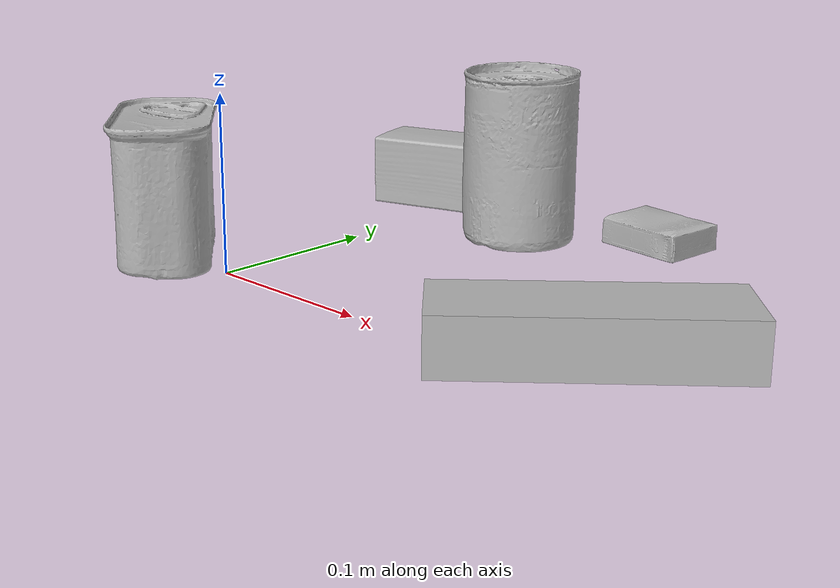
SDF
<sdf version="1.4">
  <world name="default">
    <light name="light1" type="point">
      <pose>0 0 1 0 0 0</pose>
      <diffuse>3 3 3 1</diffuse>
      <specular>3 3 3 1</specular>
    </light>
    <light name="light2" type="point">
      <pose>0 0.5 2 0 0 0</pose>
      <diffuse>1 1 1 1</diffuse>
      <specular>1 1 1 1</specular>
    </light>
    <light name="light3" type="point">
      <pose>0 0.5 2 0 0 0</pose>
      <diffuse>3 3 3 1</diffuse>
      <specular>3 3 3 1</specular>
    </light>
    <scene>
      <ambient>0.7 0.7 0.7</ambient>
    </scene>
    <model name="box1">
      <link name="link_box1">
        <collision name="default">
          <geometry>
            <mesh>
              <uri>model://jenga/collision_meshes/collision.obj</uri>
              <scale>1.0 1.0 1.0</scale>
            </mesh>
          </geometry>
          <surface>
            <friction>
              <ode>
                <mu>0.5</mu>
                <mu2>0.5</mu2>
              </ode>
            </friction>
          <contact>
        <ode>
            <max_vel>0</max_vel>
            <min_depth>0.0001</min_depth>
            <kp>1e8</kp>
        </ode>
    </contact></surface>
        </collision>
        <visual name="default">
          <geometry>
            <mesh>
              <uri>model://jenga/visual_meshes/visual.dae</uri>
              <scale>1.0 1.0 1.0</scale>
            </mesh>
          </geometry>
        </visual>
        <inertial>
          <mass>0.13349448144435883</mass>
          <pose>-2.502855807051674e-07 -0.00010250010382151231 -4.0923401684267446e-05 0.0 -7.342153480750062e-07 0.0</pose>
          <inertia>
            <ixx>3.694116e-05</ixx>
            <iyy>0.0002503123</iyy>
            <izz>0.00026722968</izz>
            <ixy>0</ixy>
            <ixz>0</ixz>
            <iyz>0</iyz>
          </inertia>
        </inertial>
      </link>
      <pose>0.21869774162769318 0.03436954692006111 0.014999995939433575 -1.7954413012416013e-08 3.434936649536661e-10 -2.412146732132655</pose>
    </model>
    <model name="box2">
      <link name="link_box2">
        <collision name="default">
          <geometry>
            <mesh>
              <uri>model://cracker_box/collision_meshes/collision.obj</uri>
              <scale>0.25 0.25 0.25</scale>
            </mesh>
          </geometry>
          <surface>
            <friction>
              <ode>
                <mu>0.5</mu>
                <mu2>0.5</mu2>
              </ode>
            </friction>
          <contact>
        <ode>
            <max_vel>0</max_vel>
            <min_depth>0.0001</min_depth>
            <kp>1e8</kp>
        </ode>
    </contact></surface>
        </collision>
        <visual name="default">
          <geometry>
            <mesh>
              <uri>model://cracker_box/visual_meshes/visual.dae</uri>
              <scale>0.25 0.25 0.25</scale>
            </mesh>
          </geometry>
        </visual>
        <inertial>
          <mass>0.02145323157310486</mass>
          <pose>0.00023660292208660394 6.358561950037256e-05 -0.00042573839891701937 -0.00031620765701486096 -0.011106487737550933 0.0025467954675071156</pose>
          <inertia>
            <ixx>3.4104648e-06</ixx>
            <iyy>5.631348e-06</iyy>
            <izz>8.036451e-06</izz>
            <ixy>0</ixy>
            <ixz>0</ixz>
            <iyz>0</iyz>
          </inertia>
        </inertial>
      </link>
      <pose>0.14268673956394196 0.20944124460220337 0.009096028283238411 -0.014050286532310906 -0.005016696859120684 3.036382979424512</pose>
    </model>
    <model name="box3">
      <link name="link_box3">
        <collision name="default">
          <geometry>
            <mesh>
              <uri>model://wood_block/collision_meshes/collision.obj</uri>
              <scale>0.5 0.5 0.5</scale>
            </mesh>
          </geometry>
          <surface>
            <friction>
              <ode>
                <mu>0.5</mu>
                <mu2>0.5</mu2>
              </ode>
            </friction>
          <contact>
        <ode>
            <max_vel>0</max_vel>
            <min_depth>0.0001</min_depth>
            <kp>1e8</kp>
        </ode>
    </contact></surface>
        </collision>
        <visual name="default">
          <geometry>
            <mesh>
              <uri>model://wood_block/visual_meshes/visual.dae</uri>
              <scale>0.5 0.5 0.5</scale>
            </mesh>
          </geometry>
        </visual>
        <inertial>
          <mass>0.16313479840755463</mass>
          <pose>-2.9066577553749084e-06 -0.000285404734313488 0.00013204291462898254 -0.05221116552051519 -0.005192696094342747 -0.006861377806143115</pose>
          <inertia>
            <ixx>5.457476e-05</ixx>
            <iyy>0.00017240169</iyy>
            <izz>0.00017175681</izz>
            <ixy>0</ixy>
            <ixz>0</ixz>
            <iyz>0</iyz>
          </inertia>
        </inertial>
      </link>
      <pose>-0.007724911905825138 0.20100386440753937 0.022629255428910255 -0.005208572962261866 0.005718721424263463 -2.8512999894595623</pose>
    </model>
    <model name="can1">
      <link name="link_can1">
        <collision name="default">
          <geometry>
            <mesh>
              <uri>model://potted_meat_can/collision_meshes/collision.obj</uri>
              <scale>1.0 1.0 1.0</scale>
            </mesh>
          </geometry>
          <surface>
            <friction>
              <ode>
                <mu>0.5</mu>
                <mu2>0.5</mu2>
              </ode>
            </friction>
          <contact>
        <ode>
            <max_vel>0</max_vel>
            <min_depth>0.0001</min_depth>
            <kp>1e8</kp>
        </ode>
    </contact></surface>
        </collision>
        <visual name="default">
          <geometry>
            <mesh>
              <uri>model://potted_meat_can/visual_meshes/visual.dae</uri>
              <scale>1.0 1.0 1.0</scale>
            </mesh>
          </geometry>
        </visual>
        <inertial>
          <mass>0.5782443881034851</mass>
          <pose>0.00022888134117238224 -5.989118290017359e-05 -0.0006367441383190453 -0.028093373189925445 -0.007232601430987569 0.015406267190211613</pose>
          <inertia>
            <ixx>0.0007438508</ixx>
            <iyy>0.00045194585</iyy>
            <izz>0.0005410098</izz>
            <ixy>0</ixy>
            <ixz>0</ixz>
            <iyz>0</iyz>
          </inertia>
        </inertial>
      </link>
      <pose>-0.04979771003127098 -0.00231384695507586 0.04212801158428192 -6.635784999485225e-08 -1.4682036600311977e-07 -2.285572090399124</pose>
    </model>
    <model name="can2">
      <link name="link_can2">
        <collision name="default">
          <geometry>
            <mesh>
              <uri>model://tomato_soup_can/collision_meshes/collision.obj</uri>
              <scale>1.0 1.0 1.0</scale>
            </mesh>
          </geometry>
          <surface>
            <friction>
              <ode>
                <mu>0.5</mu>
                <mu2>0.5</mu2>
              </ode>
            </friction>
          <contact>
        <ode>
            <max_vel>0</max_vel>
            <min_depth>0.0001</min_depth>
            <kp>1e8</kp>
        </ode>
    </contact></surface>
        </collision>
        <visual name="default">
          <geometry>
            <mesh>
              <uri>model://tomato_soup_can/visual_meshes/visual.dae</uri>
              <scale>1.0 1.0 1.0</scale>
            </mesh>
          </geometry>
        </visual>
        <inertial>
          <mass>0.191082164645195</mass>
          <pose>0.00012652273289859295 0.00010805522470036522 -0.0017973986687138677 0.007020071598615513 0.0004229929517945175 -0.009903241323856832</pose>
          <inertia>
            <ixx>0.0002095054</ixx>
            <iyy>0.00020829454</iyy>
            <izz>0.0001085847</izz>
            <ixy>0</ixy>
            <ixz>0</ixz>
            <iyz>0</iyz>
          </inertia>
        </inertial>
      </link>
      <pose>0.07118324190378189 0.16677016019821167 0.05127402022480965 -6.325444789209817e-07 -7.830431659902068e-07 0.10476778620800298</pose>
    </model>
  <physics type="ode">
      <max_contacts>50</max_contacts>
      <ode>
        <solver>
          <type>quick</type>
          <iters>75</iters>
        </solver>
        <constraints>
          <contact_max_correcting_vel>0</contact_max_correcting_vel>
          <contact_surface_layer>0</contact_surface_layer>
        </constraints>
      </ode>
    </physics></world>
</sdf>
